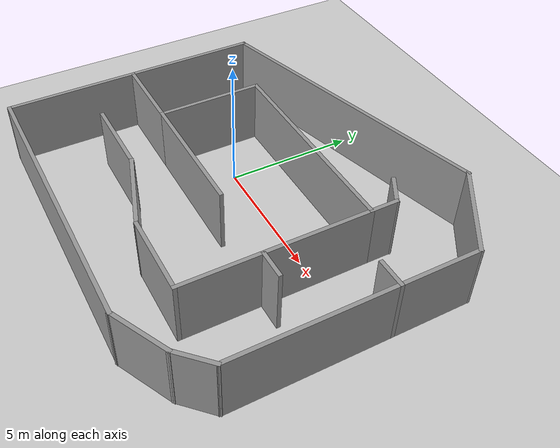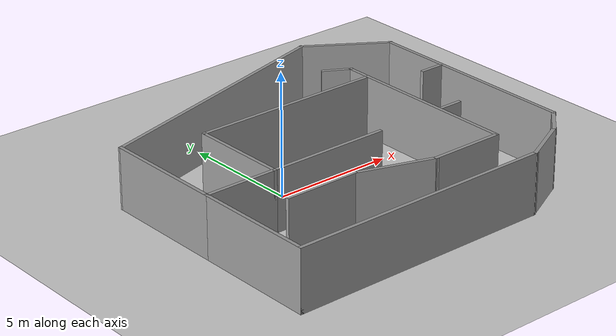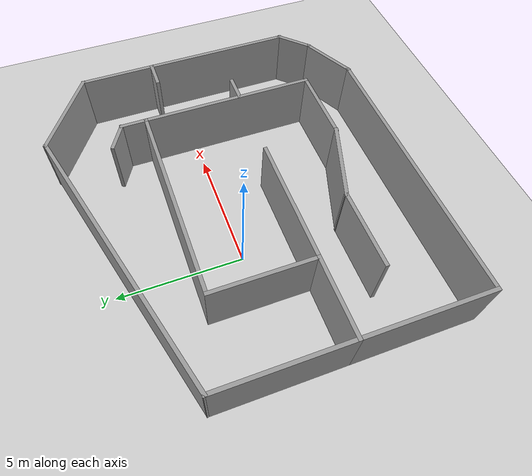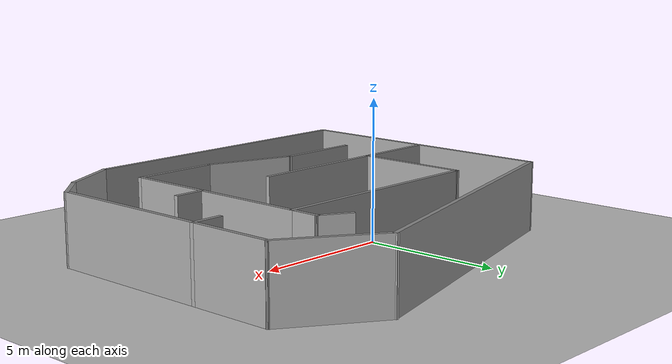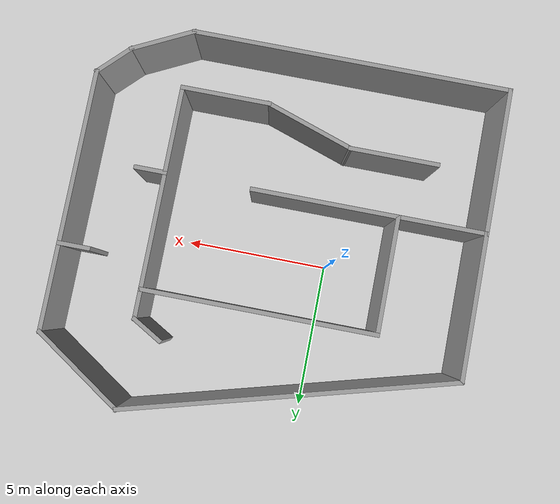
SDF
<?xml version="1.0" ?>
<sdf version="1.4">
  <!-- We use a custom world for the rrbot so that the camera angle is launched correctly -->

  <world name="default">
    <include>
      <uri>model://ground_plane</uri>
    </include>

    <!-- Global light source -->
    <include>
      <uri>model://sun</uri>
    </include>

    <include>
      <uri>model://maze</uri>
    </include>

    <!-- the automatic population of objects -->

    <!-- Focus camera on tall pendulum -->
    <gui fullscreen='0'>
      <camera name='user_camera'>
        <pose>-4.933871 4.158930 11.454491 0.000000 1.015643 -0.947813</pose>
        <view_controller>orbit</view_controller>
      </camera>
    </gui>

  </world>
</sdf>

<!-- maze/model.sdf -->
<sdf version='1.6'>
  <model name='maze'>
    <pose frame=''>2.00699 -0.498308 0 0 -0 0</pose>
    <link name='Wall_1'>
      <collision name='Wall_1_Collision'>
        <geometry>
          <box>
            <size>5.15007 0.15 2.5</size>
          </box>
        </geometry>
        <pose frame=''>0 0 1.25 0 -0 0</pose>
      </collision>
      <visual name='Wall_1_Visual'>
        <pose frame=''>0 0 1.25 0 -0 0</pose>
        <geometry>
          <box>
            <size>5.15007 0.15 2.5</size>
          </box>
        </geometry>
        <material>
          <script>
            <uri>file://media/materials/scripts/gazebo.material</uri>
            <name>Gazebo/Grey</name>
          </script>
          <ambient>1 1 1 1</ambient>
        </material>
        <meta>
          <layer>0</layer>
        </meta>
      </visual>
      <pose frame=''>-1.50699 -1.50169 0 0 -0 3.14159</pose>
    </link>
    <link name='Wall_10'>
      <collision name='Wall_10_Collision'>
        <geometry>
          <box>
            <size>3.15 0.15 2.5</size>
          </box>
        </geometry>
        <pose frame=''>0 0 1.25 0 -0 0</pose>
      </collision>
      <visual name='Wall_10_Visual'>
        <pose frame=''>0 0 1.25 0 -0 0</pose>
        <geometry>
          <box>
            <size>3.15 0.15 2.5</size>
          </box>
        </geometry>
        <material>
          <script>
            <uri>file://media/materials/scripts/gazebo.material</uri>
            <name>Gazebo/Grey</name>
          </script>
          <ambient>1 1 1 1</ambient>
        </material>
        <meta>
          <layer>0</layer>
        </meta>
      </visual>
      <pose frame=''>2.49301 -4.50169 0 0 -0 3.14159</pose>
    </link>
    <link name='Wall_12'>
      <collision name='Wall_12_Collision'>
        <geometry>
          <box>
            <size>3.15 0.15 2.5</size>
          </box>
        </geometry>
        <pose frame=''>0 0 1.25 0 -0 0</pose>
      </collision>
      <visual name='Wall_12_Visual'>
        <pose frame=''>0 0 1.25 0 -0 0</pose>
        <geometry>
          <box>
            <size>3.15 0.15 2.5</size>
          </box>
        </geometry>
        <material>
          <script>
            <uri>file://media/materials/scripts/gazebo.material</uri>
            <name>Gazebo/Grey</name>
          </script>
          <ambient>1 1 1 1</ambient>
        </material>
        <meta>
          <layer>0</layer>
        </meta>
      </visual>
      <pose frame=''>-5.50699 -1.50169 0 0 -0 3.14159</pose>
    </link>
    <link name='Wall_14'>
      <collision name='Wall_14_Collision'>
        <geometry>
          <box>
            <size>5.15 0.15 2.5</size>
          </box>
        </geometry>
        <pose frame=''>0 0 1.25 0 -0 0</pose>
      </collision>
      <visual name='Wall_14_Visual'>
        <pose frame=''>0 0 1.25 0 -0 0</pose>
        <geometry>
          <box>
            <size>5.15 0.15 2.5</size>
          </box>
        </geometry>
        <material>
          <script>
            <uri>file://media/materials/scripts/gazebo.material</uri>
            <name>Gazebo/Grey</name>
          </script>
          <ambient>1 1 1 1</ambient>
        </material>
        <meta>
          <layer>0</layer>
        </meta>
      </visual>
      <pose frame=''>-7.00699 -4.00169 0 0 -0 -1.5708</pose>
    </link>
    <link name='Wall_22'>
      <collision name='Wall_22_Collision'>
        <geometry>
          <box>
            <size>3.31228 0.15 2.5</size>
          </box>
        </geometry>
        <pose frame=''>0 0 1.25 0 -0 0</pose>
      </collision>
      <visual name='Wall_22_Visual'>
        <pose frame=''>0 0 1.25 0 -0 0</pose>
        <geometry>
          <box>
            <size>3.31228 0.15 2.5</size>
          </box>
        </geometry>
        <material>
          <script>
            <uri>file://media/materials/scripts/gazebo.material</uri>
            <name>Gazebo/Grey</name>
          </script>
          <ambient>1 1 1 1</ambient>
        </material>
        <meta>
          <layer>0</layer>
        </meta>
      </visual>
      <pose frame=''>-0.506988 -4.00169 0 0 -0 2.81984</pose>
    </link>
    <link name='Wall_23'>
      <collision name='Wall_23_Collision'>
        <geometry>
          <box>
            <size>3.15 0.15 2.5</size>
          </box>
        </geometry>
        <pose frame=''>0 0 1.25 0 -0 0</pose>
      </collision>
      <visual name='Wall_23_Visual'>
        <pose frame=''>0 0 1.25 0 -0 0</pose>
        <geometry>
          <box>
            <size>3.15 0.15 2.5</size>
          </box>
        </geometry>
        <material>
          <script>
            <uri>file://media/materials/scripts/gazebo.material</uri>
            <name>Gazebo/Grey</name>
          </script>
          <ambient>1 1 1 1</ambient>
        </material>
        <meta>
          <layer>0</layer>
        </meta>
      </visual>
      <pose frame=''>-3.50699 -3.50169 0 0 -0 3.14159</pose>
    </link>
    <link name='Wall_25'>
      <collision name='Wall_25_Collision'>
        <geometry>
          <box>
            <size>11.15 0.15 2.5</size>
          </box>
        </geometry>
        <pose frame=''>0 0 1.25 0 -0 0</pose>
      </collision>
      <visual name='Wall_25_Visual'>
        <pose frame=''>0 0 1.25 0 -0 0</pose>
        <geometry>
          <box>
            <size>11.15 0.15 2.5</size>
          </box>
        </geometry>
        <material>
          <script>
            <uri>file://media/materials/scripts/gazebo.material</uri>
            <name>Gazebo/Grey</name>
          </script>
          <ambient>1 1 1 1</ambient>
        </material>
        <meta>
          <layer>0</layer>
        </meta>
      </visual>
      <pose frame=''>-1.50699 -6.50169 0 0 -0 0</pose>
    </link>
    <link name='Wall_27'>
      <collision name='Wall_27_Collision'>
        <geometry>
          <box>
            <size>2.38607 0.15 2.5</size>
          </box>
        </geometry>
        <pose frame=''>0 0 1.25 0 -0 0</pose>
      </collision>
      <visual name='Wall_27_Visual'>
        <pose frame=''>0 0 1.25 0 -0 0</pose>
        <geometry>
          <box>
            <size>2.38607 0.15 2.5</size>
          </box>
        </geometry>
        <material>
          <script>
            <uri>file://media/materials/scripts/gazebo.material</uri>
            <name>Gazebo/Grey</name>
          </script>
          <ambient>1 1 1 1</ambient>
        </material>
        <meta>
          <layer>0</layer>
        </meta>
      </visual>
      <pose frame=''>4.99301 -6.00169 0 0 -0 0.463648</pose>
    </link>
    <link name='Wall_3'>
      <collision name='Wall_3_Collision'>
        <geometry>
          <box>
            <size>4.15 0.15 2.5</size>
          </box>
        </geometry>
        <pose frame=''>0 0 1.25 0 -0 0</pose>
      </collision>
      <visual name='Wall_3_Visual'>
        <pose frame=''>0 0 1.25 0 -0 0</pose>
        <geometry>
          <box>
            <size>4.15 0.15 2.5</size>
          </box>
        </geometry>
        <material>
          <script>
            <uri>file://media/materials/scripts/gazebo.material</uri>
            <name>Gazebo/Grey</name>
          </script>
          <ambient>1 1 1 1</ambient>
        </material>
        <meta>
          <layer>0</layer>
        </meta>
      </visual>
      <pose frame=''>-4.00699 0.498308 0 0 -0 1.5708</pose>
    </link>
    <link name='Wall_30'>
      <collision name='Wall_30_Collision'>
        <geometry>
          <box>
            <size>1.56421 0.15 2.5</size>
          </box>
        </geometry>
        <pose frame=''>0 0 1.25 0 -0 0</pose>
      </collision>
      <visual name='Wall_30_Visual'>
        <pose frame=''>0 0 1.25 0 -0 0</pose>
        <geometry>
          <box>
            <size>1.56421 0.15 2.5</size>
          </box>
        </geometry>
        <material>
          <script>
            <uri>file://media/materials/scripts/gazebo.material</uri>
            <name>Gazebo/Grey</name>
          </script>
          <ambient>1 1 1 1</ambient>
        </material>
        <meta>
          <layer>0</layer>
        </meta>
      </visual>
      <pose frame=''>6.49301 -5.00169 0 0 -0 0.785398</pose>
    </link>
    <link name='Wall_32'>
      <collision name='Wall_32_Collision'>
        <geometry>
          <box>
            <size>9.15 0.15 2.5</size>
          </box>
        </geometry>
        <pose frame=''>0 0 1.25 0 -0 0</pose>
      </collision>
      <visual name='Wall_32_Visual'>
        <pose frame=''>0 0 1.25 0 -0 0</pose>
        <geometry>
          <box>
            <size>9.15 0.15 2.5</size>
          </box>
        </geometry>
        <material>
          <script>
            <uri>file://media/materials/scripts/gazebo.material</uri>
            <name>Gazebo/Grey</name>
          </script>
          <ambient>1 1 1 1</ambient>
        </material>
        <meta>
          <layer>0</layer>
        </meta>
      </visual>
      <pose frame=''>6.99301 -0.001692 0 0 -0 1.5708</pose>
    </link>
    <link name='Wall_35'>
      <collision name='Wall_35_Collision'>
        <geometry>
          <box>
            <size>1.15 0.15 2.5</size>
          </box>
        </geometry>
        <pose frame=''>0 0 1.25 0 -0 0</pose>
      </collision>
      <visual name='Wall_35_Visual'>
        <pose frame=''>0 0 1.25 0 -0 0</pose>
        <geometry>
          <box>
            <size>1.15 0.15 2.5</size>
          </box>
        </geometry>
        <material>
          <script>
            <uri>file://media/materials/scripts/gazebo.material</uri>
            <name>Gazebo/Grey</name>
          </script>
          <ambient>1 1 1 1</ambient>
        </material>
        <meta>
          <layer>0</layer>
        </meta>
      </visual>
      <pose frame=''>4.49301 -1.50169 0 0 -0 0</pose>
    </link>
    <link name='Wall_37'>
      <collision name='Wall_37_Collision'>
        <geometry>
          <box>
            <size>1.15 0.15 2.5</size>
          </box>
        </geometry>
        <pose frame=''>0 0 1.25 0 -0 0</pose>
      </collision>
      <visual name='Wall_37_Visual'>
        <pose frame=''>0 0 1.25 0 -0 0</pose>
        <geometry>
          <box>
            <size>1.15 0.15 2.5</size>
          </box>
        </geometry>
        <material>
          <script>
            <uri>file://media/materials/scripts/gazebo.material</uri>
            <name>Gazebo/Grey</name>
          </script>
          <ambient>1 1 1 1</ambient>
        </material>
        <meta>
          <layer>0</layer>
        </meta>
      </visual>
      <pose frame=''>6.49301 1.49831 0 0 -0 3.14159</pose>
    </link>
    <link name='Wall_41'>
      <collision name='Wall_41_Collision'>
        <geometry>
          <box>
            <size>3.75555 0.15 2.5</size>
          </box>
        </geometry>
        <pose frame=''>0 0 1.25 0 -0 0</pose>
      </collision>
      <visual name='Wall_41_Visual'>
        <pose frame=''>0 0 1.25 0 -0 0</pose>
        <geometry>
          <box>
            <size>3.75555 0.15 2.5</size>
          </box>
        </geometry>
        <material>
          <script>
            <uri>file://media/materials/scripts/gazebo.material</uri>
            <name>Gazebo/Grey</name>
          </script>
          <ambient>1 1 1 1</ambient>
        </material>
        <meta>
          <layer>0</layer>
        </meta>
      </visual>
      <pose frame=''>5.49301 5.49831 0 0 -0 2.55359</pose>
    </link>
    <link name='Wall_5'>
      <collision name='Wall_5_Collision'>
        <geometry>
          <box>
            <size>8.15 0.15 2.5</size>
          </box>
        </geometry>
        <pose frame=''>0 0 1.25 0 -0 0</pose>
      </collision>
      <visual name='Wall_5_Visual'>
        <pose frame=''>0 0 1.25 0 -0 0</pose>
        <geometry>
          <box>
            <size>8.15 0.15 2.5</size>
          </box>
        </geometry>
        <material>
          <script>
            <uri>file://media/materials/scripts/gazebo.material</uri>
            <name>Gazebo/Grey</name>
          </script>
          <ambient>1 1 1 1</ambient>
        </material>
        <meta>
          <layer>0</layer>
        </meta>
      </visual>
      <pose frame=''>-0.006988 2.49831 0 0 -0 0</pose>
    </link>
    <link name='Wall_60'>
      <collision name='Wall_60_Collision'>
        <geometry>
          <box>
            <size>1.15 0.15 2.5</size>
          </box>
        </geometry>
        <pose frame=''>0 0 1.25 0 -0 0</pose>
      </collision>
      <visual name='Wall_60_Visual'>
        <pose frame=''>0 0 1.25 0 -0 0</pose>
        <geometry>
          <box>
            <size>1.15 0.15 2.5</size>
          </box>
        </geometry>
        <material>
          <script>
            <uri>file://media/materials/scripts/gazebo.material</uri>
            <name>Gazebo/Grey</name>
          </script>
          <ambient>1 1 1 1</ambient>
        </material>
        <meta>
          <layer>0</layer>
        </meta>
      </visual>
      <pose frame=''>3.99301 2.99831 0 0 -0 1.5708</pose>
    </link>
    <link name='Wall_67'>
      <collision name='Wall_67_Collision'>
        <geometry>
          <box>
            <size>1.25 0.15 2.5</size>
          </box>
        </geometry>
        <pose frame=''>0 0 1.25 0 -0 0</pose>
      </collision>
      <visual name='Wall_67_Visual'>
        <pose frame=''>0 0 1.25 0 -0 0</pose>
        <geometry>
          <box>
            <size>1.25 0.15 2.5</size>
          </box>
        </geometry>
        <material>
          <script>
            <uri>file://media/materials/scripts/gazebo.material</uri>
            <name>Gazebo/Grey</name>
          </script>
          <ambient>1 1 1 1</ambient>
        </material>
        <meta>
          <layer>0</layer>
        </meta>
      </visual>
      <pose frame=''>3.5167 3.77331 0 0 -0 2.61799</pose>
    </link>
    <link name='Wall_71'>
      <collision name='Wall_71_Collision'>
        <geometry>
          <box>
            <size>11.5518 0.15 2.5</size>
          </box>
        </geometry>
        <pose frame=''>0 0 1.25 0 -0 0</pose>
      </collision>
      <visual name='Wall_71_Visual'>
        <pose frame=''>0 0 1.25 0 -0 0</pose>
        <geometry>
          <box>
            <size>11.5518 0.15 2.5</size>
          </box>
        </geometry>
        <material>
          <script>
            <uri>file://media/materials/scripts/gazebo.material</uri>
            <name>Gazebo/Grey</name>
          </script>
          <ambient>1 1 1 1</ambient>
        </material>
        <meta>
          <layer>0</layer>
        </meta>
      </visual>
      <pose frame=''>-1.50699 4.99831 0 0 -0 -2.87534</pose>
    </link>
    <link name='Wall_73'>
      <collision name='Wall_73_Collision'>
        <geometry>
          <box>
            <size>5.15 0.15 2.5</size>
          </box>
        </geometry>
        <pose frame=''>0 0 1.25 0 -0 0</pose>
      </collision>
      <visual name='Wall_73_Visual'>
        <pose frame=''>0 0 1.25 0 -0 0</pose>
        <geometry>
          <box>
            <size>5.15 0.15 2.5</size>
          </box>
        </geometry>
        <material>
          <script>
            <uri>file://media/materials/scripts/gazebo.material</uri>
            <name>Gazebo/Grey</name>
          </script>
          <ambient>1 1 1 1</ambient>
        </material>
        <meta>
          <layer>0</layer>
        </meta>
      </visual>
      <pose frame=''>-7.00699 0.998308 0 0 -0 -1.5708</pose>
    </link>
    <link name='Wall_8'>
      <collision name='Wall_8_Collision'>
        <geometry>
          <box>
            <size>7.15 0.15 2.5</size>
          </box>
        </geometry>
        <pose frame=''>0 0 1.25 0 -0 0</pose>
      </collision>
      <visual name='Wall_8_Visual'>
        <pose frame=''>0 0 1.25 0 -0 0</pose>
        <geometry>
          <box>
            <size>7.15 0.15 2.5</size>
          </box>
        </geometry>
        <material>
          <script>
            <uri>file://media/materials/scripts/gazebo.material</uri>
            <name>Gazebo/Grey</name>
          </script>
          <ambient>1 1 1 1</ambient>
        </material>
        <meta>
          <layer>0</layer>
        </meta>
      </visual>
      <pose frame=''>3.99301 -1.00169 0 0 -0 -1.5708</pose>
    </link>
    <static>1</static>
  </model>
</sdf>
